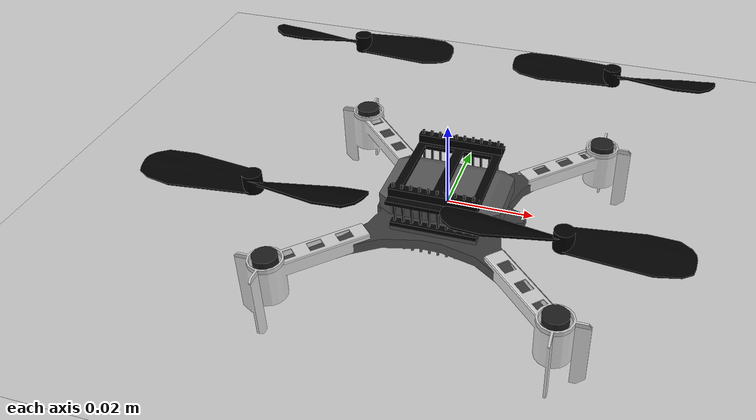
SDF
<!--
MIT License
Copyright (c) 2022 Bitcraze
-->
<?xml version="1.0" ?>

<sdf version="1.6">
  <world name="crazyflie_world">
    <physics name="1ms" type="ignored">
      <max_step_size>0.01</max_step_size>
      <real_time_factor>1.0</real_time_factor>
    </physics>
    <plugin
      filename="ignition-gazebo-physics-system"
      name="ignition::gazebo::systems::Physics">
    </plugin>
    <plugin
      filename="ignition-gazebo-user-commands-system"
      name="ignition::gazebo::systems::UserCommands">
    </plugin>
    <plugin
      filename="ignition-gazebo-scene-broadcaster-system"
      name="ignition::gazebo::systems::SceneBroadcaster">
    </plugin>
    <plugin
      filename="ignition-gazebo-contact-system"
      name="ignition::gazebo::systems::Contact">
    </plugin>

    <light type="directional" name="sun">
      <cast_shadows>true</cast_shadows>
      <pose>0 0 10 0 0 0</pose>
      <diffuse>0.8 0.8 0.8 1</diffuse>
      <specular>0.2 0.2 0.2 1</specular>
      <attenuation>
        <range>1000</range>
        <constant>0.9</constant>
        <linear>0.01</linear>
        <quadratic>0.001</quadratic>
      </attenuation>
      <direction>-0.5 0.1 -0.9</direction>
    </light>

    <model name="ground_plane">
      <static>true</static>
      <link name="link">
        <collision name="collision">
          <geometry>
            <plane>
              <normal>0 0 1</normal>
              <size>100 100</size>
            </plane>
          </geometry>
        </collision>
        <visual name="visual">
          <geometry>
            <plane>
              <normal>0 0 1</normal>
              <size>100 100</size>
            </plane>
          </geometry>
          <material>
            <ambient>0.8 0.8 0.8 1</ambient>
            <diffuse>0.8 0.8 0.8 1</diffuse>
            <specular>0.8 0.8 0.8 1</specular>
          </material>
        </visual>
      </link>
    </model>
    <include>
      <uri>model://crazyflie</uri>
      <name>crazyflie</name>
      <pose>0 0 0 0 0 0</pose>
      <plugin filename="CrazyflieController"
            name="crazyflie_controller::CrazyflieController">
    </plugin>
    </include>
  </world>
</sdf>

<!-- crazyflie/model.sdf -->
<sdf version="1.8">
    <model name="crazyflie">
        <pose>0 0 0.0 0 0 3.14</pose>
        <link name="crazyflie/body">
        <inertial>
            <pose>0 0 0 0 0 0</pose>
            <mass>0.025</mass>
            <inertia>
                <ixx>0.000016572</ixx>
                <ixy>0.00</ixy>
                <ixz>0.00</ixz>
                <iyy>0.000016656</iyy>
                <iyz>0.00000</iyz>
                <izz>0.000029262</izz>
            </inertia>
        </inertial>
        <collision name="crazyflie/body_collision">
            <pose>0 0 0 0 0 0</pose>
            <geometry>
                <box>
                    <size>0.10 0.10 0.03</size>
                </box>
            </geometry>
        </collision>
        <visual name="crazyflie/body_visual">
            <pose>0 0 0 0 -0 0</pose>
            <geometry>
                <mesh>
                    <scale>1 1 1</scale>
                    <uri>../../meshes/collada_files/cf2_assembly.dae</uri>
                </mesh>
            </geometry>
        </visual>
        </link>
        <link name="crazyflie/m1_prop">
            <pose>0.031 -0.031 0.021 0 0 0</pose>
            <inertial>
                <pose>0 0 0 0 -0 0</pose>
                <mass>0.0008</mass>
                <inertia>
                    <ixx>0.000000002*70</ixx>
                    <iyy>0.000000167*70</iyy>
                    <izz>0.000000168*70</izz>
                    <ixy>0</ixy>
                    <ixz>0</ixz>
                    <iyz>0</iyz>
                </inertia>
            </inertial>
            <visual name="crazyflie/m1_visual">
                <pose>0 0 0 0 -0 0</pose>
                <geometry>
                    <mesh>
                        <scale>1 1 1</scale>
                        <uri>../../meshes/collada_files/ccw_prop.dae</uri>
                    </mesh>
                </geometry>
            </visual>
        </link>
        <link name="crazyflie/m2_prop">
            <pose>-0.031 -0.031 0.021 0 0 0</pose>
            <inertial>
                <pose>0 0 0 0 -0 0</pose>
                <mass>0.0008</mass>
                <inertia>
                    <ixx>0.000000002*50</ixx>
                    <iyy>0.000000167*50</iyy>
                    <izz>0.000000168*50</izz>
                    <ixy>0</ixy>
                    <ixz>0</ixz>
                    <iyz>0</iyz>
                </inertia>
            </inertial>
            <visual name="crazyflie/m2_visual">
                <pose>0 0 0 0 -0 0</pose>
                <geometry>
                    <mesh>
                        <scale>1 1 1</scale>
                        <uri>../../meshes/collada_files/cw_prop.dae</uri>
                    </mesh>
                </geometry>
            </visual>
        </link>
        <link name="crazyflie/m3_prop">
            <pose >-0.031 0.031 0.021 0 0 0</pose>
            <inertial>
                <pose>0 0 0 0 -0 0</pose>
                <mass>0.0008</mass>
                <inertia>
                    <ixx>0.000000002*50</ixx>
                    <iyy>0.000000167*50</iyy>
                    <izz>0.000000168*50</izz>
                    <ixy>0</ixy>
                    <ixz>0</ixz>
                    <iyz>0</iyz>
                </inertia>
            </inertial>
            <visual name="crazyflie/m3_visual">
                <pose>0 0 0 0 -0 0</pose>
                <geometry>
                    <mesh>
                        <scale>1 1 1</scale>
                        <uri>../../meshes/collada_files/ccw_prop.dae</uri>
                    </mesh>
                </geometry>
            </visual>
        </link>
        <link name="crazyflie/m4_prop">
            <pose>0.031 0.031 0.021 0 0 0</pose>
            <inertial>
                <pose>0 0 0 0 -0 0</pose>
                <mass>0.0008</mass>
                <inertia>
                    <ixx>0.000000002*50</ixx>
                    <iyy>0.000000167*50</iyy>
                    <izz>0.000000168*50</izz>
                    <ixy>0</ixy>
                    <ixz>0</ixz>
                    <iyz>0</iyz>
                </inertia>
            </inertial>
            <visual name="crazyflie/m4_visual">
                <pose>0 0 0 0 -0 0</pose>
                <geometry>
                    <mesh>
                        <scale>1 1 1</scale>
                        <uri>../../meshes/collada_files/cw_prop.dae</uri>
                    </mesh>
                </geometry>
            </visual>
        </link>
        <joint name="crazyflie/m1_joint" type="revolute">
            <child>crazyflie/m1_prop</child>
            <parent>crazyflie/body</parent>
            <axis>
                <xyz>0 0 1</xyz>
                <limit>
                    <lower>-1e+16</lower>
                    <upper>1e+16</upper>
                </limit>
                <dynamics>
                    <spring_reference>0</spring_reference>
                    <spring_stiffness>0</spring_stiffness>
                </dynamics>
            </axis>
        </joint>
                <joint name="crazyflie/m2_joint" type="revolute">
            <child>crazyflie/m2_prop</child>
            <parent>crazyflie/body</parent>
            <axis>
                <xyz>0 0 1</xyz>
                <limit>
                    <lower>-1e+16</lower>
                    <upper>1e+16</upper>
                </limit>
                <dynamics>
                    <spring_reference>0</spring_reference>
                    <spring_stiffness>0</spring_stiffness>
                </dynamics>
            </axis>
        </joint>
                <joint name="crazyflie/m3_joint" type="revolute">
            <child>crazyflie/m3_prop</child>
            <parent>crazyflie/body</parent>
            <axis>
                <xyz>0 0 1</xyz>
                <limit>
                    <lower>-1e+16</lower>
                    <upper>1e+16</upper>
                </limit>
                <dynamics>
                    <spring_reference>0</spring_reference>
                    <spring_stiffness>0</spring_stiffness>
                </dynamics>
            </axis>
        </joint>
        <joint name="crazyflie/m4_joint" type="revolute">
            <child>crazyflie/m4_prop</child>
            <parent>crazyflie/body</parent>
            <axis>
                <xyz>0 0 1</xyz>
                <limit>
                    <lower>-1e+16</lower>
                    <upper>1e+16</upper>
                </limit>
                <dynamics>
                    <spring_reference>0</spring_reference>
                    <spring_stiffness>0</spring_stiffness>
                </dynamics>
            </axis>
        </joint>
    <plugin
        filename="ignition-gazebo-multicopter-motor-model-system"
        name="ignition::gazebo::systems::MulticopterMotorModel">
        <robotNamespace>crazyflie</robotNamespace>
        <jointName>crazyflie/m1_joint</jointName>
        <linkName>crazyflie/m1_prop</linkName>
        <turningDirection>ccw</turningDirection>
        <timeConstantUp>0.0125</timeConstantUp>
        <timeConstantDown>0.025</timeConstantDown>
        <maxRotVelocity>2618</maxRotVelocity>
        <motorConstant>1.28192e-08</motorConstant>
        <momentConstant>0.005964552</momentConstant>
        <commandSubTopic>gazebo/command/motor_speed</commandSubTopic>
        <motorNumber>0</motorNumber>
        <rotorDragCoefficient>8.06428e-05</rotorDragCoefficient>
        <rollingMomentCoefficient>0.0000001</rollingMomentCoefficient>
        <motorSpeedPubTopic>motor_speed/0</motorSpeedPubTopic>
        <rotorVelocitySlowdownSim>150</rotorVelocitySlowdownSim>
        <motorType>velocity</motorType>
      </plugin>
      <plugin
        filename="ignition-gazebo-multicopter-motor-model-system"
        name="ignition::gazebo::systems::MulticopterMotorModel">
        <robotNamespace>crazyflie</robotNamespace>
        <jointName>crazyflie/m2_joint</jointName>
        <linkName>crazyflie/m2_prop</linkName>
        <turningDirection>cw</turningDirection>
        <timeConstantUp>0.0125</timeConstantUp>
        <timeConstantDown>0.025</timeConstantDown>
        <maxRotVelocity>2618</maxRotVelocity>
        <motorConstant>1.28192e-08</motorConstant>
        <momentConstant>0.005964552</momentConstant>
        <commandSubTopic>gazebo/command/motor_speed</commandSubTopic>
        <motorNumber>1</motorNumber>
        <rotorDragCoefficient>8.06428e-05</rotorDragCoefficient>
        <rollingMomentCoefficient>0.0000001</rollingMomentCoefficient>
        <motorSpeedPubTopic>motor_speed/1</motorSpeedPubTopic>
        <rotorVelocitySlowdownSim>150</rotorVelocitySlowdownSim>
        <motorType>velocity</motorType>
      </plugin>
      <plugin
        filename="ignition-gazebo-multicopter-motor-model-system"
        name="ignition::gazebo::systems::MulticopterMotorModel">
        <robotNamespace>crazyflie</robotNamespace>
        <jointName>crazyflie/m3_joint</jointName>
        <linkName>crazyflie/m3_prop</linkName>
        <turningDirection>ccw</turningDirection>
        <timeConstantUp>0.0125</timeConstantUp>
        <timeConstantDown>0.025</timeConstantDown>
        <maxRotVelocity>2618</maxRotVelocity>
        <motorConstant>1.28192e-08</motorConstant>
        <momentConstant>0.005964552</momentConstant>
        <commandSubTopic>gazebo/command/motor_speed</commandSubTopic>
        <motorNumber>2</motorNumber>
        <rotorDragCoefficient>8.06428e-05</rotorDragCoefficient>
        <rollingMomentCoefficient>0.0000001</rollingMomentCoefficient>
        <motorSpeedPubTopic>motor_speed/2</motorSpeedPubTopic>
        <rotorVelocitySlowdownSim>150</rotorVelocitySlowdownSim>
        <motorType>velocity</motorType>
      </plugin>
      <plugin
        filename="ignition-gazebo-multicopter-motor-model-system"
        name="ignition::gazebo::systems::MulticopterMotorModel">
        <robotNamespace>crazyflie</robotNamespace>
        <jointName>crazyflie/m4_joint</jointName>
        <linkName>crazyflie/m4_prop</linkName>
        <turningDirection>cw</turningDirection>
        <timeConstantUp>0.0125</timeConstantUp>
        <timeConstantDown>0.025</timeConstantDown>
        <maxRotVelocity>2618</maxRotVelocity>
        <motorConstant>1.28192e-08</motorConstant>
        <momentConstant>0.005964552</momentConstant>
        <commandSubTopic>gazebo/command/motor_speed</commandSubTopic>
        <motorNumber>3</motorNumber>
        <rotorDragCoefficient>8.06428e-05</rotorDragCoefficient>
        <rollingMomentCoefficient>0.000001</rollingMomentCoefficient>
        <motorSpeedPubTopic>motor_speed/3</motorSpeedPubTopic>
        <rotorVelocitySlowdownSim>150</rotorVelocitySlowdownSim>
        <motorType>velocity</motorType>
      </plugin>
      <plugin
        filename="ignition-gazebo-odometry-publisher-system"
        name="ignition::gazebo::systems::OdometryPublisher">
        <dimensions>3</dimensions>
      </plugin>
    </model>
</sdf>
